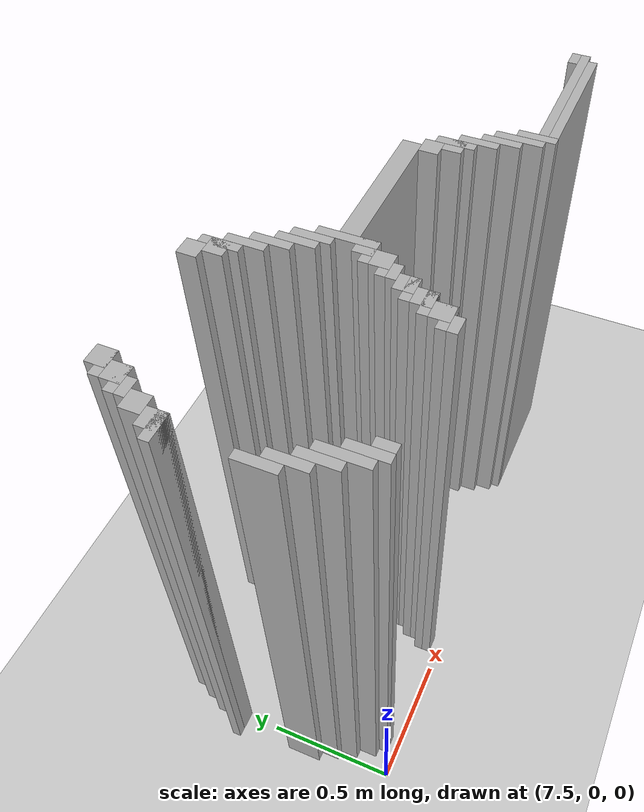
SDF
<sdf version="1.6">
 <world name="slam_world">
  <model name="ground_plane">
   <static>true</static>
   <link name="link">
    <collision name="collision">
     <geometry><plane><normal>0 0 1</normal><size>100 100</size></plane></geometry>
    </collision>
    <visual name="visual">
     <geometry><plane><normal>0 0 1</normal><size>100 100</size></plane></geometry>
     <material>
      <ambient>0.8 0.8 0.8 1</ambient>
      <diffuse>0.8 0.8 0.8 1</diffuse>
      <specular>0.8 0.8 0.8 1</specular>
     </material>
    </visual>
   </link>
  </model>
  <model name="wall_5436">
   <static>true</static>
   <pose>7.621809744779582 0.9048723897911832 1.0 0 0 0</pose>
   <link name="link">
    <collision name="collision">
     <geometry><box><size>0.06960556844547564 0.06960556844547564 2.0</size></box></geometry>
    </collision>
    <visual name="visual">
     <geometry><box><size>0.06960556844547564 0.06960556844547564 2.0</size></box></geometry>
     <material><ambient>0.5 0.5 0.5 1</ambient><diffuse>0.7 0.7 0.7 1</diffuse></material>
    </visual>
   </link>
  </model>
  <model name="wall_5437">
   <static>true</static>
   <pose>8.109048723897912 0.9048723897911832 1.0 0 0 0</pose>
   <link name="link">
    <collision name="collision">
     <geometry><box><size>0.06960556844547564 0.06960556844547564 2.0</size></box></geometry>
    </collision>
    <visual name="visual">
     <geometry><box><size>0.06960556844547564 0.06960556844547564 2.0</size></box></geometry>
     <material><ambient>0.5 0.5 0.5 1</ambient><diffuse>0.7 0.7 0.7 1</diffuse></material>
    </visual>
   </link>
  </model>
  <model name="wall_5450">
   <static>true</static>
   <pose>7.604408352668213 0.8874709976798143 1.0 0 0 0</pose>
   <link name="link">
    <collision name="collision">
     <geometry><box><size>0.10440835266821345 0.03480278422273782 2.0</size></box></geometry>
    </collision>
    <visual name="visual">
     <geometry><box><size>0.10440835266821345 0.03480278422273782 2.0</size></box></geometry>
     <material><ambient>0.5 0.5 0.5 1</ambient><diffuse>0.7 0.7 0.7 1</diffuse></material>
    </visual>
   </link>
  </model>
  <model name="wall_5451">
   <static>true</static>
   <pose>8.161252900232018 0.8352668213457076 1.0 0 0 0</pose>
   <link name="link">
    <collision name="collision">
     <geometry><box><size>0.03480278422273782 0.13921113689095127 2.0</size></box></geometry>
    </collision>
    <visual name="visual">
     <geometry><box><size>0.03480278422273782 0.13921113689095127 2.0</size></box></geometry>
     <material><ambient>0.5 0.5 0.5 1</ambient><diffuse>0.7 0.7 0.7 1</diffuse></material>
    </visual>
   </link>
  </model>
  <model name="wall_5460">
   <static>true</static>
   <pose>7.587006960556844 0.8352668213457076 1.0 0 0 0</pose>
   <link name="link">
    <collision name="collision">
     <geometry><box><size>0.06960556844547564 0.06960556844547564 2.0</size></box></geometry>
    </collision>
    <visual name="visual">
     <geometry><box><size>0.06960556844547564 0.06960556844547564 2.0</size></box></geometry>
     <material><ambient>0.5 0.5 0.5 1</ambient><diffuse>0.7 0.7 0.7 1</diffuse></material>
    </visual>
   </link>
  </model>
  <model name="wall_5461">
   <static>true</static>
   <pose>8.14385150812065 0.8352668213457076 1.0 0 0 0</pose>
   <link name="link">
    <collision name="collision">
     <geometry><box><size>0.06960556844547564 0.06960556844547564 2.0</size></box></geometry>
    </collision>
    <visual name="visual">
     <geometry><box><size>0.06960556844547564 0.06960556844547564 2.0</size></box></geometry>
     <material><ambient>0.5 0.5 0.5 1</ambient><diffuse>0.7 0.7 0.7 1</diffuse></material>
    </visual>
   </link>
  </model>
  <model name="wall_5470">
   <static>true</static>
   <pose>7.569605568445476 0.8178654292343387 1.0 0 0 0</pose>
   <link name="link">
    <collision name="collision">
     <geometry><box><size>0.10440835266821345 0.03480278422273782 2.0</size></box></geometry>
    </collision>
    <visual name="visual">
     <geometry><box><size>0.10440835266821345 0.03480278422273782 2.0</size></box></geometry>
     <material><ambient>0.5 0.5 0.5 1</ambient><diffuse>0.7 0.7 0.7 1</diffuse></material>
    </visual>
   </link>
  </model>
  <model name="wall_5471">
   <static>true</static>
   <pose>8.196055684454755 0.765661252900232 1.0 0 0 0</pose>
   <link name="link">
    <collision name="collision">
     <geometry><box><size>0.03480278422273782 0.13921113689095127 2.0</size></box></geometry>
    </collision>
    <visual name="visual">
     <geometry><box><size>0.03480278422273782 0.13921113689095127 2.0</size></box></geometry>
     <material><ambient>0.5 0.5 0.5 1</ambient><diffuse>0.7 0.7 0.7 1</diffuse></material>
    </visual>
   </link>
  </model>
  <model name="wall_5477">
   <static>true</static>
   <pose>7.552204176334106 0.7830626450116009 1.0 0 0 0</pose>
   <link name="link">
    <collision name="collision">
     <geometry><box><size>0.06960556844547564 0.03480278422273782 2.0</size></box></geometry>
    </collision>
    <visual name="visual">
     <geometry><box><size>0.06960556844547564 0.03480278422273782 2.0</size></box></geometry>
     <material><ambient>0.5 0.5 0.5 1</ambient><diffuse>0.7 0.7 0.7 1</diffuse></material>
    </visual>
   </link>
  </model>
  <model name="wall_5486">
   <static>true</static>
   <pose>7.517401392111369 0.7308584686774942 1.0 0 0 0</pose>
   <link name="link">
    <collision name="collision">
     <geometry><box><size>0.06960556844547564 0.06960556844547564 2.0</size></box></geometry>
    </collision>
    <visual name="visual">
     <geometry><box><size>0.06960556844547564 0.06960556844547564 2.0</size></box></geometry>
     <material><ambient>0.5 0.5 0.5 1</ambient><diffuse>0.7 0.7 0.7 1</diffuse></material>
    </visual>
   </link>
  </model>
  <model name="wall_5487">
   <static>true</static>
   <pose>8.230858468677495 0.6960556844547563 1.0 0 0 0</pose>
   <link name="link">
    <collision name="collision">
     <geometry><box><size>0.03480278422273782 0.13921113689095127 2.0</size></box></geometry>
    </collision>
    <visual name="visual">
     <geometry><box><size>0.03480278422273782 0.13921113689095127 2.0</size></box></geometry>
     <material><ambient>0.5 0.5 0.5 1</ambient><diffuse>0.7 0.7 0.7 1</diffuse></material>
    </visual>
   </link>
  </model>
  <model name="wall_5496">
   <static>true</static>
   <pose>7.48259860788863 0.6612529002320185 1.0 0 0 0</pose>
   <link name="link">
    <collision name="collision">
     <geometry><box><size>0.06960556844547564 0.06960556844547564 2.0</size></box></geometry>
    </collision>
    <visual name="visual">
     <geometry><box><size>0.06960556844547564 0.06960556844547564 2.0</size></box></geometry>
     <material><ambient>0.5 0.5 0.5 1</ambient><diffuse>0.7 0.7 0.7 1</diffuse></material>
    </visual>
   </link>
  </model>
  <model name="wall_5497">
   <static>true</static>
   <pose>8.265661252900232 0.6264501160092807 1.0 0 0 0</pose>
   <link name="link">
    <collision name="collision">
     <geometry><box><size>0.03480278422273782 0.13921113689095127 2.0</size></box></geometry>
    </collision>
    <visual name="visual">
     <geometry><box><size>0.03480278422273782 0.13921113689095127 2.0</size></box></geometry>
     <material><ambient>0.5 0.5 0.5 1</ambient><diffuse>0.7 0.7 0.7 1</diffuse></material>
    </visual>
   </link>
  </model>
  <model name="wall_5506">
   <static>true</static>
   <pose>7.465197215777262 0.6438515081206496 1.0 0 0 0</pose>
   <link name="link">
    <collision name="collision">
     <geometry><box><size>0.10440835266821345 0.03480278422273782 2.0</size></box></geometry>
    </collision>
    <visual name="visual">
     <geometry><box><size>0.10440835266821345 0.03480278422273782 2.0</size></box></geometry>
     <material><ambient>0.5 0.5 0.5 1</ambient><diffuse>0.7 0.7 0.7 1</diffuse></material>
    </visual>
   </link>
  </model>
  <model name="wall_5507">
   <static>true</static>
   <pose>8.30046403712297 0.5916473317865429 1.0 0 0 0</pose>
   <link name="link">
    <collision name="collision">
     <geometry><box><size>0.03480278422273782 0.13921113689095127 2.0</size></box></geometry>
    </collision>
    <visual name="visual">
     <geometry><box><size>0.03480278422273782 0.13921113689095127 2.0</size></box></geometry>
     <material><ambient>0.5 0.5 0.5 1</ambient><diffuse>0.7 0.7 0.7 1</diffuse></material>
    </visual>
   </link>
  </model>
  <model name="wall_5523">
   <static>true</static>
   <pose>8.335266821345707 0.4872389791183295 1.0 0 0 0</pose>
   <link name="link">
    <collision name="collision">
     <geometry><box><size>0.03480278422273782 0.2088167053364269 2.0</size></box></geometry>
    </collision>
    <visual name="visual">
     <geometry><box><size>0.03480278422273782 0.2088167053364269 2.0</size></box></geometry>
     <material><ambient>0.5 0.5 0.5 1</ambient><diffuse>0.7 0.7 0.7 1</diffuse></material>
    </visual>
   </link>
  </model>
  <model name="wall_5538">
   <static>true</static>
   <pose>8.61368909512761 0.4872389791183295 1.0 0 0 0</pose>
   <link name="link">
    <collision name="collision">
     <geometry><box><size>0.5220417633410672 0.06960556844547564 2.0</size></box></geometry>
    </collision>
    <visual name="visual">
     <geometry><box><size>0.5220417633410672 0.06960556844547564 2.0</size></box></geometry>
     <material><ambient>0.5 0.5 0.5 1</ambient><diffuse>0.7 0.7 0.7 1</diffuse></material>
    </visual>
   </link>
  </model>
  <model name="wall_5554">
   <static>true</static>
   <pose>8.317865429234338 0.4176334106728538 1.0 0 0 0</pose>
   <link name="link">
    <collision name="collision">
     <geometry><box><size>0.06960556844547564 0.06960556844547564 2.0</size></box></geometry>
    </collision>
    <visual name="visual">
     <geometry><box><size>0.06960556844547564 0.06960556844547564 2.0</size></box></geometry>
     <material><ambient>0.5 0.5 0.5 1</ambient><diffuse>0.7 0.7 0.7 1</diffuse></material>
    </visual>
   </link>
  </model>
  <model name="wall_5555">
   <static>true</static>
   <pose>8.874709976798144 0.4176334106728538 1.0 0 0 0</pose>
   <link name="link">
    <collision name="collision">
     <geometry><box><size>0.06960556844547564 0.06960556844547564 2.0</size></box></geometry>
    </collision>
    <visual name="visual">
     <geometry><box><size>0.06960556844547564 0.06960556844547564 2.0</size></box></geometry>
     <material><ambient>0.5 0.5 0.5 1</ambient><diffuse>0.7 0.7 0.7 1</diffuse></material>
    </visual>
   </link>
  </model>
  <model name="wall_5573">
   <static>true</static>
   <pose>7.465197215777262 0.34802784222737815 1.0 0 0 0</pose>
   <link name="link">
    <collision name="collision">
     <geometry><box><size>0.03480278422273782 0.13921113689095127 2.0</size></box></geometry>
    </collision>
    <visual name="visual">
     <geometry><box><size>0.03480278422273782 0.13921113689095127 2.0</size></box></geometry>
     <material><ambient>0.5 0.5 0.5 1</ambient><diffuse>0.7 0.7 0.7 1</diffuse></material>
    </visual>
   </link>
  </model>
  <model name="wall_5574">
   <static>true</static>
   <pose>8.30046403712297 0.4002320185614849 1.0 0 0 0</pose>
   <link name="link">
    <collision name="collision">
     <geometry><box><size>0.10440835266821345 0.03480278422273782 2.0</size></box></geometry>
    </collision>
    <visual name="visual">
     <geometry><box><size>0.10440835266821345 0.03480278422273782 2.0</size></box></geometry>
     <material><ambient>0.5 0.5 0.5 1</ambient><diffuse>0.7 0.7 0.7 1</diffuse></material>
    </visual>
   </link>
  </model>
  <model name="wall_5575">
   <static>true</static>
   <pose>8.92691415313225 0.34802784222737815 1.0 0 0 0</pose>
   <link name="link">
    <collision name="collision">
     <geometry><box><size>0.03480278422273782 0.13921113689095127 2.0</size></box></geometry>
    </collision>
    <visual name="visual">
     <geometry><box><size>0.03480278422273782 0.13921113689095127 2.0</size></box></geometry>
     <material><ambient>0.5 0.5 0.5 1</ambient><diffuse>0.7 0.7 0.7 1</diffuse></material>
    </visual>
   </link>
  </model>
  <model name="wall_5594">
   <static>true</static>
   <pose>8.2830626450116 0.34802784222737815 1.0 0 0 0</pose>
   <link name="link">
    <collision name="collision">
     <geometry><box><size>0.06960556844547564 0.06960556844547564 2.0</size></box></geometry>
    </collision>
    <visual name="visual">
     <geometry><box><size>0.06960556844547564 0.06960556844547564 2.0</size></box></geometry>
     <material><ambient>0.5 0.5 0.5 1</ambient><diffuse>0.7 0.7 0.7 1</diffuse></material>
    </visual>
   </link>
  </model>
  <model name="wall_5595">
   <static>true</static>
   <pose>8.909512761020881 0.34802784222737815 1.0 0 0 0</pose>
   <link name="link">
    <collision name="collision">
     <geometry><box><size>0.06960556844547564 0.06960556844547564 2.0</size></box></geometry>
    </collision>
    <visual name="visual">
     <geometry><box><size>0.06960556844547564 0.06960556844547564 2.0</size></box></geometry>
     <material><ambient>0.5 0.5 0.5 1</ambient><diffuse>0.7 0.7 0.7 1</diffuse></material>
    </visual>
   </link>
  </model>
  <model name="wall_5613">
   <static>true</static>
   <pose>7.5 0.27842227378190254 1.0 0 0 0</pose>
   <link name="link">
    <collision name="collision">
     <geometry><box><size>0.03480278422273782 0.13921113689095127 2.0</size></box></geometry>
    </collision>
    <visual name="visual">
     <geometry><box><size>0.03480278422273782 0.13921113689095127 2.0</size></box></geometry>
     <material><ambient>0.5 0.5 0.5 1</ambient><diffuse>0.7 0.7 0.7 1</diffuse></material>
    </visual>
   </link>
  </model>
  <model name="wall_5614">
   <static>true</static>
   <pose>8.265661252900232 0.3306264501160093 1.0 0 0 0</pose>
   <link name="link">
    <collision name="collision">
     <geometry><box><size>0.10440835266821345 0.03480278422273782 2.0</size></box></geometry>
    </collision>
    <visual name="visual">
     <geometry><box><size>0.10440835266821345 0.03480278422273782 2.0</size></box></geometry>
     <material><ambient>0.5 0.5 0.5 1</ambient><diffuse>0.7 0.7 0.7 1</diffuse></material>
    </visual>
   </link>
  </model>
  <model name="wall_5615">
   <static>true</static>
   <pose>8.961716937354987 0.27842227378190254 1.0 0 0 0</pose>
   <link name="link">
    <collision name="collision">
     <geometry><box><size>0.03480278422273782 0.13921113689095127 2.0</size></box></geometry>
    </collision>
    <visual name="visual">
     <geometry><box><size>0.03480278422273782 0.13921113689095127 2.0</size></box></geometry>
     <material><ambient>0.5 0.5 0.5 1</ambient><diffuse>0.7 0.7 0.7 1</diffuse></material>
    </visual>
   </link>
  </model>
  <model name="wall_5628">
   <static>true</static>
   <pose>8.248259860788863 0.29582366589327147 1.0 0 0 0</pose>
   <link name="link">
    <collision name="collision">
     <geometry><box><size>0.06960556844547564 0.03480278422273782 2.0</size></box></geometry>
    </collision>
    <visual name="visual">
     <geometry><box><size>0.06960556844547564 0.03480278422273782 2.0</size></box></geometry>
     <material><ambient>0.5 0.5 0.5 1</ambient><diffuse>0.7 0.7 0.7 1</diffuse></material>
    </visual>
   </link>
  </model>
  <model name="wall_5643">
   <static>true</static>
   <pose>7.534802784222737 0.2088167053364269 1.0 0 0 0</pose>
   <link name="link">
    <collision name="collision">
     <geometry><box><size>0.03480278422273782 0.13921113689095127 2.0</size></box></geometry>
    </collision>
    <visual name="visual">
     <geometry><box><size>0.03480278422273782 0.13921113689095127 2.0</size></box></geometry>
     <material><ambient>0.5 0.5 0.5 1</ambient><diffuse>0.7 0.7 0.7 1</diffuse></material>
    </visual>
   </link>
  </model>
  <model name="wall_5644">
   <static>true</static>
   <pose>8.213457076566124 0.24361948955916474 1.0 0 0 0</pose>
   <link name="link">
    <collision name="collision">
     <geometry><box><size>0.06960556844547564 0.06960556844547564 2.0</size></box></geometry>
    </collision>
    <visual name="visual">
     <geometry><box><size>0.06960556844547564 0.06960556844547564 2.0</size></box></geometry>
     <material><ambient>0.5 0.5 0.5 1</ambient><diffuse>0.7 0.7 0.7 1</diffuse></material>
    </visual>
   </link>
  </model>
  <model name="wall_5645">
   <static>true</static>
   <pose>8.996519721577727 0.2088167053364269 1.0 0 0 0</pose>
   <link name="link">
    <collision name="collision">
     <geometry><box><size>0.03480278422273782 0.13921113689095127 2.0</size></box></geometry>
    </collision>
    <visual name="visual">
     <geometry><box><size>0.03480278422273782 0.13921113689095127 2.0</size></box></geometry>
     <material><ambient>0.5 0.5 0.5 1</ambient><diffuse>0.7 0.7 0.7 1</diffuse></material>
    </visual>
   </link>
  </model>
  <model name="wall_5663">
   <static>true</static>
   <pose>7.569605568445476 0.15661252900232017 1.0 0 0 0</pose>
   <link name="link">
    <collision name="collision">
     <geometry><box><size>0.03480278422273782 0.17401392111368907 2.0</size></box></geometry>
    </collision>
    <visual name="visual">
     <geometry><box><size>0.03480278422273782 0.17401392111368907 2.0</size></box></geometry>
     <material><ambient>0.5 0.5 0.5 1</ambient><diffuse>0.7 0.7 0.7 1</diffuse></material>
    </visual>
   </link>
  </model>
  <model name="wall_5664">
   <static>true</static>
   <pose>8.196055684454755 0.2262180974477958 1.0 0 0 0</pose>
   <link name="link">
    <collision name="collision">
     <geometry><box><size>0.10440835266821345 0.03480278422273782 2.0</size></box></geometry>
    </collision>
    <visual name="visual">
     <geometry><box><size>0.10440835266821345 0.03480278422273782 2.0</size></box></geometry>
     <material><ambient>0.5 0.5 0.5 1</ambient><diffuse>0.7 0.7 0.7 1</diffuse></material>
    </visual>
   </link>
  </model>
  <model name="wall_5665">
   <static>true</static>
   <pose>9.031322505800464 0.15661252900232017 1.0 0 0 0</pose>
   <link name="link">
    <collision name="collision">
     <geometry><box><size>0.03480278422273782 0.17401392111368907 2.0</size></box></geometry>
    </collision>
    <visual name="visual">
     <geometry><box><size>0.03480278422273782 0.17401392111368907 2.0</size></box></geometry>
     <material><ambient>0.5 0.5 0.5 1</ambient><diffuse>0.7 0.7 0.7 1</diffuse></material>
    </visual>
   </link>
  </model>
  <model name="wall_5678">
   <static>true</static>
   <pose>8.178654292343387 0.17401392111368907 1.0 0 0 0</pose>
   <link name="link">
    <collision name="collision">
     <geometry><box><size>0.06960556844547564 0.06960556844547564 2.0</size></box></geometry>
    </collision>
    <visual name="visual">
     <geometry><box><size>0.06960556844547564 0.06960556844547564 2.0</size></box></geometry>
     <material><ambient>0.5 0.5 0.5 1</ambient><diffuse>0.7 0.7 0.7 1</diffuse></material>
    </visual>
   </link>
  </model>
  <model name="wall_5693">
   <static>true</static>
   <pose>7.604408352668213 0.10440835266821345 1.0 0 0 0</pose>
   <link name="link">
    <collision name="collision">
     <geometry><box><size>0.03480278422273782 0.13921113689095127 2.0</size></box></geometry>
    </collision>
    <visual name="visual">
     <geometry><box><size>0.03480278422273782 0.13921113689095127 2.0</size></box></geometry>
     <material><ambient>0.5 0.5 0.5 1</ambient><diffuse>0.7 0.7 0.7 1</diffuse></material>
    </visual>
   </link>
  </model>
  <model name="wall_5694">
   <static>true</static>
   <pose>8.161252900232018 0.15661252900232017 1.0 0 0 0</pose>
   <link name="link">
    <collision name="collision">
     <geometry><box><size>0.10440835266821345 0.03480278422273782 2.0</size></box></geometry>
    </collision>
    <visual name="visual">
     <geometry><box><size>0.10440835266821345 0.03480278422273782 2.0</size></box></geometry>
     <material><ambient>0.5 0.5 0.5 1</ambient><diffuse>0.7 0.7 0.7 1</diffuse></material>
    </visual>
   </link>
  </model>
  <model name="wall_5695">
   <static>true</static>
   <pose>9.066125290023201 0.10440835266821345 1.0 0 0 0</pose>
   <link name="link">
    <collision name="collision">
     <geometry><box><size>0.03480278422273782 0.13921113689095127 2.0</size></box></geometry>
    </collision>
    <visual name="visual">
     <geometry><box><size>0.03480278422273782 0.13921113689095127 2.0</size></box></geometry>
     <material><ambient>0.5 0.5 0.5 1</ambient><diffuse>0.7 0.7 0.7 1</diffuse></material>
    </visual>
   </link>
  </model>
  <model name="wall_5708">
   <static>true</static>
   <pose>8.14385150812065 0.10440835266821345 1.0 0 0 0</pose>
   <link name="link">
    <collision name="collision">
     <geometry><box><size>0.06960556844547564 0.06960556844547564 2.0</size></box></geometry>
    </collision>
    <visual name="visual">
     <geometry><box><size>0.06960556844547564 0.06960556844547564 2.0</size></box></geometry>
     <material><ambient>0.5 0.5 0.5 1</ambient><diffuse>0.7 0.7 0.7 1</diffuse></material>
    </visual>
   </link>
  </model>
  <model name="wall_5709">
   <static>true</static>
   <pose>9.605568445475638 0.10440835266821345 1.0 0 0 0</pose>
   <link name="link">
    <collision name="collision">
     <geometry><box><size>0.06960556844547564 0.06960556844547564 2.0</size></box></geometry>
    </collision>
    <visual name="visual">
     <geometry><box><size>0.06960556844547564 0.06960556844547564 2.0</size></box></geometry>
     <material><ambient>0.5 0.5 0.5 1</ambient><diffuse>0.7 0.7 0.7 1</diffuse></material>
    </visual>
   </link>
  </model>
  <model name="wall_5718">
   <static>true</static>
   <pose>7.6392111368909505 0.06960556844547564 1.0 0 0 0</pose>
   <link name="link">
    <collision name="collision">
     <geometry><box><size>0.03480278422273782 0.06960556844547564 2.0</size></box></geometry>
    </collision>
    <visual name="visual">
     <geometry><box><size>0.03480278422273782 0.06960556844547564 2.0</size></box></geometry>
     <material><ambient>0.5 0.5 0.5 1</ambient><diffuse>0.7 0.7 0.7 1</diffuse></material>
    </visual>
   </link>
  </model>
  <model name="wall_5719">
   <static>true</static>
   <pose>8.12645011600928 0.08700696055684454 1.0 0 0 0</pose>
   <link name="link">
    <collision name="collision">
     <geometry><box><size>0.10440835266821345 0.03480278422273782 2.0</size></box></geometry>
    </collision>
    <visual name="visual">
     <geometry><box><size>0.10440835266821345 0.03480278422273782 2.0</size></box></geometry>
     <material><ambient>0.5 0.5 0.5 1</ambient><diffuse>0.7 0.7 0.7 1</diffuse></material>
    </visual>
   </link>
  </model>
  <model name="wall_5720">
   <static>true</static>
   <pose>9.361948955916473 0.08700696055684454 1.0 0 0 0</pose>
   <link name="link">
    <collision name="collision">
     <geometry><box><size>0.5568445475638051 0.03480278422273782 2.0</size></box></geometry>
    </collision>
    <visual name="visual">
     <geometry><box><size>0.5568445475638051 0.03480278422273782 2.0</size></box></geometry>
     <material><ambient>0.5 0.5 0.5 1</ambient><diffuse>0.7 0.7 0.7 1</diffuse></material>
    </visual>
   </link>
  </model>
  <model name="wall_5729">
   <static>true</static>
   <pose>8.109048723897912 0.052204176334106726 1.0 0 0 0</pose>
   <link name="link">
    <collision name="collision">
     <geometry><box><size>0.06960556844547564 0.03480278422273782 2.0</size></box></geometry>
    </collision>
    <visual name="visual">
     <geometry><box><size>0.06960556844547564 0.03480278422273782 2.0</size></box></geometry>
     <material><ambient>0.5 0.5 0.5 1</ambient><diffuse>0.7 0.7 0.7 1</diffuse></material>
    </visual>
   </link>
  </model>
  <model name="wall_5730">
   <static>true</static>
   <pose>9.344547563805104 0.052204176334106726 1.0 0 0 0</pose>
   <link name="link">
    <collision name="collision">
     <geometry><box><size>0.5220417633410672 0.03480278422273782 2.0</size></box></geometry>
    </collision>
    <visual name="visual">
     <geometry><box><size>0.5220417633410672 0.03480278422273782 2.0</size></box></geometry>
     <material><ambient>0.5 0.5 0.5 1</ambient><diffuse>0.7 0.7 0.7 1</diffuse></material>
    </visual>
   </link>
  </model>
 </world>
</sdf>
